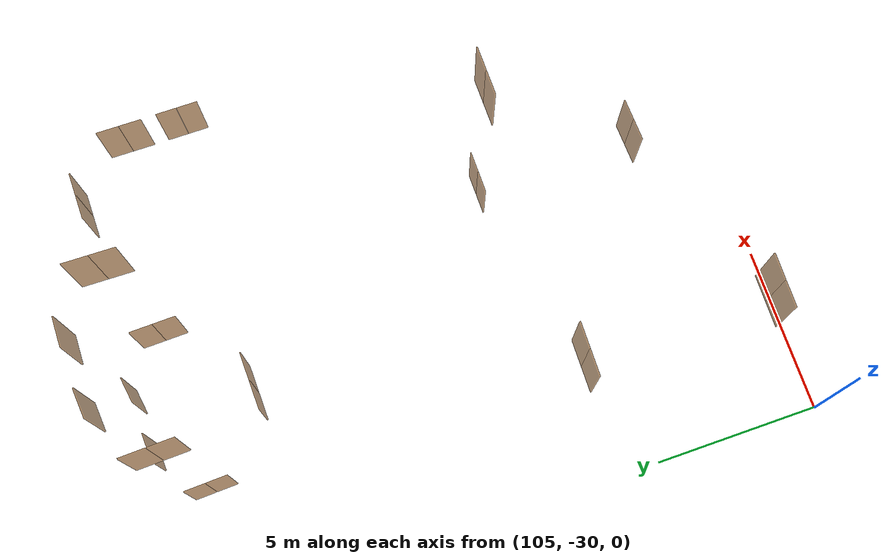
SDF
<sdf version="1.7">
 <world name="sim_world">
  <model name="TD2040CP1">
   <pose>110.93195870937694 -14.513987817578775 0.0 0 0 0.010869137177270357</pose>
   <link name="right">
    <pose>0.43675845922780765 0 1.11 0 0 0</pose>
    <visual name="right_visual">
     <geometry><box><size>0.8635169184556153 0.03 2.2</size></box></geometry>
     <material>
      <ambient>0.5 0.25 0 0.6</ambient>
      <diffuse>0.5 0.25 0 0.6</diffuse>
      <pbr><metal><metalness>0.0</metalness></metal></pbr>
     </material>
    </visual>
    <collision name="right_collision">
     <geometry><box><size>0.8635169184556153 0.03 2.2</size></box></geometry>
     <surface><contact><collide_bitmask>0x02</collide_bitmask></contact></surface>
    </collision>
    <inertial>
     <mass>50.0</mass>
     <inertia><ixx>20.17041666666667</ixx><iyy>23.273589451912844</iyy><izz>3.1106727852461744</izz></inertia>
    </inertial>
   </link>
   <joint name="right_joint" type="revolute">
    <parent>world</parent>
    <child>right</child>
    <axis><xyz>0 0 -1</xyz><limit><lower>0</lower><upper>1.57</upper></limit></axis>
    <pose>0.43675845922780765 0 0 0 0 0</pose>
   </joint>
   <link name="left">
    <pose>-0.43675845922780765 0 1.11 0 0 0</pose>
    <visual name="left_visual">
     <geometry><box><size>0.8635169184556153 0.03 2.2</size></box></geometry>
     <material>
      <ambient>0.5 0.25 0 0.6</ambient>
      <diffuse>0.5 0.25 0 0.6</diffuse>
      <pbr><metal><metalness>0.0</metalness></metal></pbr>
     </material>
    </visual>
    <collision name="left_collision">
     <geometry><box><size>0.8635169184556153 0.03 2.2</size></box></geometry>
     <surface><contact><collide_bitmask>0x02</collide_bitmask></contact></surface>
    </collision>
    <inertial>
     <mass>50.0</mass>
     <inertia><ixx>20.17041666666667</ixx><iyy>23.273589451912844</iyy><izz>3.1106727852461744</izz></inertia>
    </inertial>
   </link>
   <joint name="left_joint" type="revolute">
    <parent>world</parent>
    <child>left</child>
    <axis><xyz>0 0 -1</xyz><limit><lower>-1.57</lower><upper>0</upper></limit></axis>
    <pose>-0.43675845922780765 0 0 0 0 0</pose>
   </joint>
   <plugin name="register_component" filename="libregister_component.so">
    <component name="Door">
     <v_max_door>0.5</v_max_door>
     <a_max_door>0.3</a_max_door>
     <a_nom_door>0.15</a_nom_door>
     <dx_min_door>0.01</dx_min_door>
     <f_max_door>500.0</f_max_door>
     <ros_interface>true</ros_interface>
     <door name="TD2040CP1" type="DoubleSwingDoor" left_joint_name="left_joint" right_joint_name="right_joint"/>
    </component>
   </plugin>
  </model>
  <model name="TD2037EA">
   <pose>108.55841164108816 -12.463243150577249 0.0 0 0 -1.5418189329433347</pose>
   <link name="right">
    <pose>0.3276870634666377 0 1.11 0 0 0</pose>
    <visual name="right_visual">
     <geometry><box><size>0.6453741269332753 0.03 2.2</size></box></geometry>
     <material>
      <ambient>0.5 0.25 0 0.6</ambient>
      <diffuse>0.5 0.25 0 0.6</diffuse>
      <pbr><metal><metalness>0.0</metalness></metal></pbr>
     </material>
    </visual>
    <collision name="right_collision">
     <geometry><box><size>0.6453741269332753 0.03 2.2</size></box></geometry>
     <surface><contact><collide_bitmask>0x02</collide_bitmask></contact></surface>
    </collision>
    <inertial>
     <mass>50.0</mass>
     <inertia><ixx>20.17041666666667</ixx><iyy>21.902115682145368</iyy><izz>1.7391990154786976</izz></inertia>
    </inertial>
   </link>
   <joint name="right_joint" type="revolute">
    <parent>world</parent>
    <child>right</child>
    <axis><xyz>0 0 -1</xyz><limit><lower>0</lower><upper>1.57</upper></limit></axis>
    <pose>0.3276870634666377 0 0 0 0 0</pose>
   </joint>
   <link name="left">
    <pose>-0.3276870634666377 0 1.11 0 0 0</pose>
    <visual name="left_visual">
     <geometry><box><size>0.6453741269332753 0.03 2.2</size></box></geometry>
     <material>
      <ambient>0.5 0.25 0 0.6</ambient>
      <diffuse>0.5 0.25 0 0.6</diffuse>
      <pbr><metal><metalness>0.0</metalness></metal></pbr>
     </material>
    </visual>
    <collision name="left_collision">
     <geometry><box><size>0.6453741269332753 0.03 2.2</size></box></geometry>
     <surface><contact><collide_bitmask>0x02</collide_bitmask></contact></surface>
    </collision>
    <inertial>
     <mass>50.0</mass>
     <inertia><ixx>20.17041666666667</ixx><iyy>21.902115682145368</iyy><izz>1.7391990154786976</izz></inertia>
    </inertial>
   </link>
   <joint name="left_joint" type="revolute">
    <parent>world</parent>
    <child>left</child>
    <axis><xyz>0 0 -1</xyz><limit><lower>-1.57</lower><upper>0</upper></limit></axis>
    <pose>-0.3276870634666377 0 0 0 0 0</pose>
   </joint>
   <plugin name="register_component" filename="libregister_component.so">
    <component name="Door">
     <v_max_door>0.5</v_max_door>
     <a_max_door>0.3</a_max_door>
     <a_nom_door>0.15</a_nom_door>
     <dx_min_door>0.01</dx_min_door>
     <f_max_door>500.0</f_max_door>
     <ros_interface>true</ros_interface>
     <door name="TD2037EA" type="DoubleSwingDoor" left_joint_name="left_joint" right_joint_name="right_joint"/>
    </component>
   </plugin>
  </model>
  <model name="TD2040CP2">
   <pose>113.40994184867046 -12.377795456118852 0.0 0 0 1.58430901780821</pose>
   <link name="right">
    <pose>0.35131703960291694 0 1.11 0 0 0</pose>
    <visual name="right_visual">
     <geometry><box><size>0.6926340792058339 0.03 2.2</size></box></geometry>
     <material>
      <ambient>0.5 0.25 0 0.6</ambient>
      <diffuse>0.5 0.25 0 0.6</diffuse>
      <pbr><metal><metalness>0.0</metalness></metal></pbr>
     </material>
    </visual>
    <collision name="right_collision">
     <geometry><box><size>0.6926340792058339 0.03 2.2</size></box></geometry>
     <surface><contact><collide_bitmask>0x02</collide_bitmask></contact></surface>
    </collision>
    <inertial>
     <mass>50.0</mass>
     <inertia><ixx>20.17041666666667</ixx><iyy>22.16559153198881</iyy><izz>2.002674865322139</izz></inertia>
    </inertial>
   </link>
   <joint name="right_joint" type="revolute">
    <parent>world</parent>
    <child>right</child>
    <axis><xyz>0 0 -1</xyz><limit><lower>0</lower><upper>1.57</upper></limit></axis>
    <pose>0.35131703960291694 0 0 0 0 0</pose>
   </joint>
   <link name="left">
    <pose>-0.35131703960291694 0 1.11 0 0 0</pose>
    <visual name="left_visual">
     <geometry><box><size>0.6926340792058339 0.03 2.2</size></box></geometry>
     <material>
      <ambient>0.5 0.25 0 0.6</ambient>
      <diffuse>0.5 0.25 0 0.6</diffuse>
      <pbr><metal><metalness>0.0</metalness></metal></pbr>
     </material>
    </visual>
    <collision name="left_collision">
     <geometry><box><size>0.6926340792058339 0.03 2.2</size></box></geometry>
     <surface><contact><collide_bitmask>0x02</collide_bitmask></contact></surface>
    </collision>
    <inertial>
     <mass>50.0</mass>
     <inertia><ixx>20.17041666666667</ixx><iyy>22.16559153198881</iyy><izz>2.002674865322139</izz></inertia>
    </inertial>
   </link>
   <joint name="left_joint" type="revolute">
    <parent>world</parent>
    <child>left</child>
    <axis><xyz>0 0 -1</xyz><limit><lower>-1.57</lower><upper>0</upper></limit></axis>
    <pose>-0.35131703960291694 0 0 0 0 0</pose>
   </joint>
   <plugin name="register_component" filename="libregister_component.so">
    <component name="Door">
     <v_max_door>0.5</v_max_door>
     <a_max_door>0.3</a_max_door>
     <a_nom_door>0.15</a_nom_door>
     <dx_min_door>0.01</dx_min_door>
     <f_max_door>500.0</f_max_door>
     <ros_interface>true</ros_interface>
     <door name="TD2040CP2" type="DoubleSwingDoor" left_joint_name="left_joint" right_joint_name="right_joint"/>
    </component>
   </plugin>
  </model>
  <model name="EM5">
   <pose>111.84223364934405 -11.14201350567555 0.0 0 0 0.13942592588749686</pose>
   <link name="right">
    <pose>0 0 1.11 0 0 0</pose>
    <visual name="right_visual">
     <geometry><box><size>0.7902498311618975 0.03 2.2</size></box></geometry>
     <material>
      <ambient>0.5 0.25 0 0.6</ambient>
      <diffuse>0.5 0.25 0 0.6</diffuse>
      <pbr><metal><metalness>0.0</metalness></metal></pbr>
     </material>
    </visual>
    <collision name="right_collision">
     <geometry><box><size>0.7902498311618975 0.03 2.2</size></box></geometry>
     <surface><contact><collide_bitmask>0x02</collide_bitmask></contact></surface>
    </collision>
    <inertial>
     <mass>50.0</mass>
     <inertia><ixx>20.17041666666667</ixx><iyy>22.7687283152142</iyy><izz>2.605811648547532</izz></inertia>
    </inertial>
   </link>
   <joint name="right_joint" type="revolute">
    <parent>world</parent>
    <child>right</child>
    <axis><xyz>0 0 -1</xyz><limit><lower>0</lower><upper>1.57</upper></limit></axis>
    <pose>0.40012491558094876 0 0 0 0 0</pose>
   </joint>
   <plugin name="register_component" filename="libregister_component.so">
    <component name="Door">
     <v_max_door>0.5</v_max_door>
     <a_max_door>0.3</a_max_door>
     <a_nom_door>0.15</a_nom_door>
     <dx_min_door>0.01</dx_min_door>
     <f_max_door>500.0</f_max_door>
     <ros_interface>true</ros_interface>
     <door name="EM5" type="SwingDoor" left_joint_name="empty_joint" right_joint_name="right_joint"/>
    </component>
   </plugin>
  </model>
  <model name="EM4">
   <pose>110.07656152432207 -11.211525328564349 0.0 0 0 -3.109853622996496</pose>
   <link name="right">
    <pose>0 0 1.11 0 0 0</pose>
    <visual name="right_visual">
     <geometry><box><size>0.8663307250637649 0.03 2.2</size></box></geometry>
     <material>
      <ambient>0.5 0.25 0 0.6</ambient>
      <diffuse>0.5 0.25 0 0.6</diffuse>
      <pbr><metal><metalness>0.0</metalness></metal></pbr>
     </material>
    </visual>
    <collision name="right_collision">
     <geometry><box><size>0.8663307250637649 0.03 2.2</size></box></geometry>
     <surface><contact><collide_bitmask>0x02</collide_bitmask></contact></surface>
    </collision>
    <inertial>
     <mass>50.0</mass>
     <inertia><ixx>20.17041666666667</ixx><iyy>23.293870521622956</iyy><izz>3.1309538549562856</izz></inertia>
    </inertial>
   </link>
   <joint name="right_joint" type="revolute">
    <parent>world</parent>
    <child>right</child>
    <axis><xyz>0 0 1</xyz><limit><lower>0</lower><upper>1.57</upper></limit></axis>
    <pose>0.43816536253188243 0 0 0 0 0</pose>
   </joint>
   <plugin name="register_component" filename="libregister_component.so">
    <component name="Door">
     <v_max_door>0.5</v_max_door>
     <a_max_door>0.3</a_max_door>
     <a_nom_door>0.15</a_nom_door>
     <dx_min_door>0.01</dx_min_door>
     <f_max_door>500.0</f_max_door>
     <ros_interface>true</ros_interface>
     <door name="EM4" type="SwingDoor" left_joint_name="empty_joint" right_joint_name="right_joint"/>
    </component>
   </plugin>
  </model>
  <model name="TD2043AA">
   <pose>117.86218869387619 -11.399220717297823 0.0 0 0 3.1318752434434827</pose>
   <link name="right">
    <pose>0.3580185026632924 0 1.11 0 0 0</pose>
    <visual name="right_visual">
     <geometry><box><size>0.7060370053265848 0.03 2.2</size></box></geometry>
     <material>
      <ambient>0.5 0.25 0 0.6</ambient>
      <diffuse>0.5 0.25 0 0.6</diffuse>
      <pbr><metal><metalness>0.0</metalness></metal></pbr>
     </material>
    </visual>
    <collision name="right_collision">
     <geometry><box><size>0.7060370053265848 0.03 2.2</size></box></geometry>
     <surface><contact><collide_bitmask>0x02</collide_bitmask></contact></surface>
    </collision>
    <inertial>
     <mass>50.0</mass>
     <inertia><ixx>20.17041666666667</ixx><iyy>22.243701053710552</iyy><izz>2.080784387043883</izz></inertia>
    </inertial>
   </link>
   <joint name="right_joint" type="revolute">
    <parent>world</parent>
    <child>right</child>
    <axis><xyz>0 0 -1</xyz><limit><lower>0</lower><upper>1.57</upper></limit></axis>
    <pose>0.3580185026632924 0 0 0 0 0</pose>
   </joint>
   <link name="left">
    <pose>-0.3580185026632924 0 1.11 0 0 0</pose>
    <visual name="left_visual">
     <geometry><box><size>0.7060370053265848 0.03 2.2</size></box></geometry>
     <material>
      <ambient>0.5 0.25 0 0.6</ambient>
      <diffuse>0.5 0.25 0 0.6</diffuse>
      <pbr><metal><metalness>0.0</metalness></metal></pbr>
     </material>
    </visual>
    <collision name="left_collision">
     <geometry><box><size>0.7060370053265848 0.03 2.2</size></box></geometry>
     <surface><contact><collide_bitmask>0x02</collide_bitmask></contact></surface>
    </collision>
    <inertial>
     <mass>50.0</mass>
     <inertia><ixx>20.17041666666667</ixx><iyy>22.243701053710552</iyy><izz>2.080784387043883</izz></inertia>
    </inertial>
   </link>
   <joint name="left_joint" type="revolute">
    <parent>world</parent>
    <child>left</child>
    <axis><xyz>0 0 -1</xyz><limit><lower>-1.57</lower><upper>0</upper></limit></axis>
    <pose>-0.3580185026632924 0 0 0 0 0</pose>
   </joint>
   <plugin name="register_component" filename="libregister_component.so">
    <component name="Door">
     <v_max_door>0.5</v_max_door>
     <a_max_door>0.3</a_max_door>
     <a_nom_door>0.15</a_nom_door>
     <dx_min_door>0.01</dx_min_door>
     <f_max_door>500.0</f_max_door>
     <ros_interface>true</ros_interface>
     <door name="TD2043AA" type="DoubleSwingDoor" left_joint_name="left_joint" right_joint_name="right_joint"/>
    </component>
   </plugin>
  </model>
  <model name="TD2021CP1">
   <pose>119.48187925736485 -13.185744144697498 0.0 0 0 1.5507964107931267</pose>
   <link name="right">
    <pose>0.3476398619596005 0 1.11 0 0 0</pose>
    <visual name="right_visual">
     <geometry><box><size>0.685279723919201 0.03 2.2</size></box></geometry>
     <material>
      <ambient>0.5 0.25 0 0.6</ambient>
      <diffuse>0.5 0.25 0 0.6</diffuse>
      <pbr><metal><metalness>0.0</metalness></metal></pbr>
     </material>
    </visual>
    <collision name="right_collision">
     <geometry><box><size>0.685279723919201 0.03 2.2</size></box></geometry>
     <surface><contact><collide_bitmask>0x02</collide_bitmask></contact></surface>
    </collision>
    <inertial>
     <mass>50.0</mass>
     <inertia><ixx>20.17041666666667</ixx><iyy>22.12336791672824</iyy><izz>1.9604512500615683</izz></inertia>
    </inertial>
   </link>
   <joint name="right_joint" type="revolute">
    <parent>world</parent>
    <child>right</child>
    <axis><xyz>0 0 -1</xyz><limit><lower>0</lower><upper>1.57</upper></limit></axis>
    <pose>0.3476398619596005 0 0 0 0 0</pose>
   </joint>
   <link name="left">
    <pose>-0.3476398619596005 0 1.11 0 0 0</pose>
    <visual name="left_visual">
     <geometry><box><size>0.685279723919201 0.03 2.2</size></box></geometry>
     <material>
      <ambient>0.5 0.25 0 0.6</ambient>
      <diffuse>0.5 0.25 0 0.6</diffuse>
      <pbr><metal><metalness>0.0</metalness></metal></pbr>
     </material>
    </visual>
    <collision name="left_collision">
     <geometry><box><size>0.685279723919201 0.03 2.2</size></box></geometry>
     <surface><contact><collide_bitmask>0x02</collide_bitmask></contact></surface>
    </collision>
    <inertial>
     <mass>50.0</mass>
     <inertia><ixx>20.17041666666667</ixx><iyy>22.12336791672824</iyy><izz>1.9604512500615683</izz></inertia>
    </inertial>
   </link>
   <joint name="left_joint" type="revolute">
    <parent>world</parent>
    <child>left</child>
    <axis><xyz>0 0 -1</xyz><limit><lower>-1.57</lower><upper>0</upper></limit></axis>
    <pose>-0.3476398619596005 0 0 0 0 0</pose>
   </joint>
   <plugin name="register_component" filename="libregister_component.so">
    <component name="Door">
     <v_max_door>0.5</v_max_door>
     <a_max_door>0.3</a_max_door>
     <a_nom_door>0.15</a_nom_door>
     <dx_min_door>0.01</dx_min_door>
     <f_max_door>500.0</f_max_door>
     <ros_interface>true</ros_interface>
     <door name="TD2021CP1" type="DoubleSwingDoor" left_joint_name="left_joint" right_joint_name="right_joint"/>
    </component>
   </plugin>
  </model>
  <model name="TD2021CP2">
   <pose>119.45955781472264 -14.968025487975128 0.0 0 0 1.5576916041753859</pose>
   <link name="right">
    <pose>0.32114661003415224 0 1.11 0 0 0</pose>
    <visual name="right_visual">
     <geometry><box><size>0.6322932200683045 0.03 2.2</size></box></geometry>
     <material>
      <ambient>0.5 0.25 0 0.6</ambient>
      <diffuse>0.5 0.25 0 0.6</diffuse>
      <pbr><metal><metalness>0.0</metalness></metal></pbr>
     </material>
    </visual>
    <collision name="right_collision">
     <geometry><box><size>0.6322932200683045 0.03 2.2</size></box></geometry>
     <surface><contact><collide_bitmask>0x02</collide_bitmask></contact></surface>
    </collision>
    <inertial>
     <mass>50.0</mass>
     <inertia><ixx>20.17041666666667</ixx><iyy>21.832477983934776</iyy><izz>1.6695613172681056</izz></inertia>
    </inertial>
   </link>
   <joint name="right_joint" type="revolute">
    <parent>world</parent>
    <child>right</child>
    <axis><xyz>0 0 -1</xyz><limit><lower>0</lower><upper>1.57</upper></limit></axis>
    <pose>0.32114661003415224 0 0 0 0 0</pose>
   </joint>
   <link name="left">
    <pose>-0.32114661003415224 0 1.11 0 0 0</pose>
    <visual name="left_visual">
     <geometry><box><size>0.6322932200683045 0.03 2.2</size></box></geometry>
     <material>
      <ambient>0.5 0.25 0 0.6</ambient>
      <diffuse>0.5 0.25 0 0.6</diffuse>
      <pbr><metal><metalness>0.0</metalness></metal></pbr>
     </material>
    </visual>
    <collision name="left_collision">
     <geometry><box><size>0.6322932200683045 0.03 2.2</size></box></geometry>
     <surface><contact><collide_bitmask>0x02</collide_bitmask></contact></surface>
    </collision>
    <inertial>
     <mass>50.0</mass>
     <inertia><ixx>20.17041666666667</ixx><iyy>21.832477983934776</iyy><izz>1.6695613172681056</izz></inertia>
    </inertial>
   </link>
   <joint name="left_joint" type="revolute">
    <parent>world</parent>
    <child>left</child>
    <axis><xyz>0 0 -1</xyz><limit><lower>-1.57</lower><upper>0</upper></limit></axis>
    <pose>-0.32114661003415224 0 0 0 0 0</pose>
   </joint>
   <plugin name="register_component" filename="libregister_component.so">
    <component name="Door">
     <v_max_door>0.5</v_max_door>
     <a_max_door>0.3</a_max_door>
     <a_nom_door>0.15</a_nom_door>
     <dx_min_door>0.01</dx_min_door>
     <f_max_door>500.0</f_max_door>
     <ros_interface>true</ros_interface>
     <door name="TD2021CP2" type="DoubleSwingDoor" left_joint_name="left_joint" right_joint_name="right_joint"/>
    </component>
   </plugin>
  </model>
  <model name="TD2046AA">
   <pose>114.60565967129442 -22.74313722678228 0.0 0 0 3.141592653589793</pose>
   <link name="right">
    <pose>0.3174324614661188 0 1.11 0 0 0</pose>
    <visual name="right_visual">
     <geometry><box><size>0.6248649229322376 0.03 2.2</size></box></geometry>
     <material>
      <ambient>0.5 0.25 0 0.6</ambient>
      <diffuse>0.5 0.25 0 0.6</diffuse>
      <pbr><metal><metalness>0.0</metalness></metal></pbr>
     </material>
    </visual>
    <collision name="right_collision">
     <geometry><box><size>0.6248649229322376 0.03 2.2</size></box></geometry>
     <surface><contact><collide_bitmask>0x02</collide_bitmask></contact></surface>
    </collision>
    <inertial>
     <mass>50.0</mass>
     <inertia><ixx>20.17041666666667</ixx><iyy>21.79356738296297</iyy><izz>1.630650716296297</izz></inertia>
    </inertial>
   </link>
   <joint name="right_joint" type="revolute">
    <parent>world</parent>
    <child>right</child>
    <axis><xyz>0 0 -1</xyz><limit><lower>0</lower><upper>1.57</upper></limit></axis>
    <pose>0.3174324614661188 0 0 0 0 0</pose>
   </joint>
   <link name="left">
    <pose>-0.3174324614661188 0 1.11 0 0 0</pose>
    <visual name="left_visual">
     <geometry><box><size>0.6248649229322376 0.03 2.2</size></box></geometry>
     <material>
      <ambient>0.5 0.25 0 0.6</ambient>
      <diffuse>0.5 0.25 0 0.6</diffuse>
      <pbr><metal><metalness>0.0</metalness></metal></pbr>
     </material>
    </visual>
    <collision name="left_collision">
     <geometry><box><size>0.6248649229322376 0.03 2.2</size></box></geometry>
     <surface><contact><collide_bitmask>0x02</collide_bitmask></contact></surface>
    </collision>
    <inertial>
     <mass>50.0</mass>
     <inertia><ixx>20.17041666666667</ixx><iyy>21.79356738296297</iyy><izz>1.630650716296297</izz></inertia>
    </inertial>
   </link>
   <joint name="left_joint" type="revolute">
    <parent>world</parent>
    <child>left</child>
    <axis><xyz>0 0 -1</xyz><limit><lower>-1.57</lower><upper>0</upper></limit></axis>
    <pose>-0.3174324614661188 0 0 0 0 0</pose>
   </joint>
   <plugin name="register_component" filename="libregister_component.so">
    <component name="Door">
     <v_max_door>0.5</v_max_door>
     <a_max_door>0.3</a_max_door>
     <a_nom_door>0.15</a_nom_door>
     <dx_min_door>0.01</dx_min_door>
     <f_max_door>500.0</f_max_door>
     <ros_interface>true</ros_interface>
     <door name="TD2046AA" type="DoubleSwingDoor" left_joint_name="left_joint" right_joint_name="right_joint"/>
    </component>
   </plugin>
  </model>
  <model name="TD2016CE1">
   <pose>114.59559313833813 -27.637929958942628 0.0 0 0 0.03998619467690964</pose>
   <link name="right">
    <pose>0.32859772831542156 0 1.11 0 0 0</pose>
    <visual name="right_visual">
     <geometry><box><size>0.6471954566308431 0.03 2.2</size></box></geometry>
     <material>
      <ambient>0.5 0.25 0 0.6</ambient>
      <diffuse>0.5 0.25 0 0.6</diffuse>
      <pbr><metal><metalness>0.0</metalness></metal></pbr>
     </material>
    </visual>
    <collision name="right_collision">
     <geometry><box><size>0.6471954566308431 0.03 2.2</size></box></geometry>
     <surface><contact><collide_bitmask>0x02</collide_bitmask></contact></surface>
    </collision>
    <inertial>
     <mass>50.0</mass>
     <inertia><ixx>20.17041666666667</ixx><iyy>21.911924829515026</iyy><izz>1.7490081628483565</izz></inertia>
    </inertial>
   </link>
   <joint name="right_joint" type="revolute">
    <parent>world</parent>
    <child>right</child>
    <axis><xyz>0 0 -1</xyz><limit><lower>0</lower><upper>1.57</upper></limit></axis>
    <pose>0.32859772831542156 0 0 0 0 0</pose>
   </joint>
   <link name="left">
    <pose>-0.32859772831542156 0 1.11 0 0 0</pose>
    <visual name="left_visual">
     <geometry><box><size>0.6471954566308431 0.03 2.2</size></box></geometry>
     <material>
      <ambient>0.5 0.25 0 0.6</ambient>
      <diffuse>0.5 0.25 0 0.6</diffuse>
      <pbr><metal><metalness>0.0</metalness></metal></pbr>
     </material>
    </visual>
    <collision name="left_collision">
     <geometry><box><size>0.6471954566308431 0.03 2.2</size></box></geometry>
     <surface><contact><collide_bitmask>0x02</collide_bitmask></contact></surface>
    </collision>
    <inertial>
     <mass>50.0</mass>
     <inertia><ixx>20.17041666666667</ixx><iyy>21.911924829515026</iyy><izz>1.7490081628483565</izz></inertia>
    </inertial>
   </link>
   <joint name="left_joint" type="revolute">
    <parent>world</parent>
    <child>left</child>
    <axis><xyz>0 0 -1</xyz><limit><lower>-1.57</lower><upper>0</upper></limit></axis>
    <pose>-0.32859772831542156 0 0 0 0 0</pose>
   </joint>
   <plugin name="register_component" filename="libregister_component.so">
    <component name="Door">
     <v_max_door>0.5</v_max_door>
     <a_max_door>0.3</a_max_door>
     <a_nom_door>0.15</a_nom_door>
     <dx_min_door>0.01</dx_min_door>
     <f_max_door>500.0</f_max_door>
     <ros_interface>true</ros_interface>
     <door name="TD2016CE1" type="DoubleSwingDoor" left_joint_name="left_joint" right_joint_name="right_joint"/>
    </component>
   </plugin>
  </model>
  <model name="TD2106AA1">
   <pose>107.33422326073593 -27.569170868249202 8.0 0 0 -0.014315952006502574</pose>
   <link name="right">
    <pose>0.34727191016413295 0 1.11 0 0 0</pose>
    <visual name="right_visual">
     <geometry><box><size>0.6845438203282659 0.03 2.2</size></box></geometry>
     <material>
      <ambient>0.5 0.25 0 0.6</ambient>
      <diffuse>0.5 0.25 0 0.6</diffuse>
      <pbr><metal><metalness>0.0</metalness></metal></pbr>
     </material>
    </visual>
    <collision name="right_collision">
     <geometry><box><size>0.6845438203282659 0.03 2.2</size></box></geometry>
     <surface><contact><collide_bitmask>0x02</collide_bitmask></contact></surface>
    </collision>
    <inertial>
     <mass>50.0</mass>
     <inertia><ixx>20.17041666666667</ixx><iyy>22.119167674790077</iyy><izz>1.9562510081234052</izz></inertia>
    </inertial>
   </link>
   <joint name="right_joint" type="revolute">
    <parent>world</parent>
    <child>right</child>
    <axis><xyz>0 0 -1</xyz><limit><lower>0</lower><upper>1.57</upper></limit></axis>
    <pose>0.34727191016413295 0 0 0 0 0</pose>
   </joint>
   <link name="left">
    <pose>-0.34727191016413295 0 1.11 0 0 0</pose>
    <visual name="left_visual">
     <geometry><box><size>0.6845438203282659 0.03 2.2</size></box></geometry>
     <material>
      <ambient>0.5 0.25 0 0.6</ambient>
      <diffuse>0.5 0.25 0 0.6</diffuse>
      <pbr><metal><metalness>0.0</metalness></metal></pbr>
     </material>
    </visual>
    <collision name="left_collision">
     <geometry><box><size>0.6845438203282659 0.03 2.2</size></box></geometry>
     <surface><contact><collide_bitmask>0x02</collide_bitmask></contact></surface>
    </collision>
    <inertial>
     <mass>50.0</mass>
     <inertia><ixx>20.17041666666667</ixx><iyy>22.119167674790077</iyy><izz>1.9562510081234052</izz></inertia>
    </inertial>
   </link>
   <joint name="left_joint" type="revolute">
    <parent>world</parent>
    <child>left</child>
    <axis><xyz>0 0 -1</xyz><limit><lower>-1.57</lower><upper>0</upper></limit></axis>
    <pose>-0.34727191016413295 0 0 0 0 0</pose>
   </joint>
   <plugin name="register_component" filename="libregister_component.so">
    <component name="Door">
     <v_max_door>0.5</v_max_door>
     <a_max_door>0.3</a_max_door>
     <a_nom_door>0.15</a_nom_door>
     <dx_min_door>0.01</dx_min_door>
     <f_max_door>500.0</f_max_door>
     <ros_interface>true</ros_interface>
     <door name="TD2106AA1" type="DoubleSwingDoor" left_joint_name="left_joint" right_joint_name="right_joint"/>
    </component>
   </plugin>
  </model>
  <model name="TD2105AA">
   <pose>107.33297833508654 -22.68511467075949 8.0 0 0 3.1212607733024695</pose>
   <link name="right">
    <pose>0.3447434769953224 0 1.11 0 0 0</pose>
    <visual name="right_visual">
     <geometry><box><size>0.6794869539906447 0.03 2.2</size></box></geometry>
     <material>
      <ambient>0.5 0.25 0 0.6</ambient>
      <diffuse>0.5 0.25 0 0.6</diffuse>
      <pbr><metal><metalness>0.0</metalness></metal></pbr>
     </material>
    </visual>
    <collision name="right_collision">
     <geometry><box><size>0.6794869539906447 0.03 2.2</size></box></geometry>
     <surface><contact><collide_bitmask>0x02</collide_bitmask></contact></surface>
    </collision>
    <inertial>
     <mass>50.0</mass>
     <inertia><ixx>20.17041666666667</ixx><iyy>22.09042716934786</iyy><izz>1.9275105026811858</izz></inertia>
    </inertial>
   </link>
   <joint name="right_joint" type="revolute">
    <parent>world</parent>
    <child>right</child>
    <axis><xyz>0 0 -1</xyz><limit><lower>0</lower><upper>1.57</upper></limit></axis>
    <pose>0.3447434769953224 0 0 0 0 0</pose>
   </joint>
   <link name="left">
    <pose>-0.3447434769953224 0 1.11 0 0 0</pose>
    <visual name="left_visual">
     <geometry><box><size>0.6794869539906447 0.03 2.2</size></box></geometry>
     <material>
      <ambient>0.5 0.25 0 0.6</ambient>
      <diffuse>0.5 0.25 0 0.6</diffuse>
      <pbr><metal><metalness>0.0</metalness></metal></pbr>
     </material>
    </visual>
    <collision name="left_collision">
     <geometry><box><size>0.6794869539906447 0.03 2.2</size></box></geometry>
     <surface><contact><collide_bitmask>0x02</collide_bitmask></contact></surface>
    </collision>
    <inertial>
     <mass>50.0</mass>
     <inertia><ixx>20.17041666666667</ixx><iyy>22.09042716934786</iyy><izz>1.9275105026811858</izz></inertia>
    </inertial>
   </link>
   <joint name="left_joint" type="revolute">
    <parent>world</parent>
    <child>left</child>
    <axis><xyz>0 0 -1</xyz><limit><lower>-1.57</lower><upper>0</upper></limit></axis>
    <pose>-0.3447434769953224 0 0 0 0 0</pose>
   </joint>
   <plugin name="register_component" filename="libregister_component.so">
    <component name="Door">
     <v_max_door>0.5</v_max_door>
     <a_max_door>0.3</a_max_door>
     <a_nom_door>0.15</a_nom_door>
     <dx_min_door>0.01</dx_min_door>
     <f_max_door>500.0</f_max_door>
     <ros_interface>true</ros_interface>
     <door name="TD2105AA" type="DoubleSwingDoor" left_joint_name="left_joint" right_joint_name="right_joint"/>
    </component>
   </plugin>
  </model>
  <model name="TD2104AA">
   <pose>108.55326135818878 -12.350445967769003 8.0 0 0 -1.5483969063546774</pose>
   <link name="right">
    <pose>0.34828097666944996 0 1.11 0 0 0</pose>
    <visual name="right_visual">
     <geometry><box><size>0.6865619533388999 0.03 2.2</size></box></geometry>
     <material>
      <ambient>0.5 0.25 0 0.6</ambient>
      <diffuse>0.5 0.25 0 0.6</diffuse>
      <pbr><metal><metalness>0.0</metalness></metal></pbr>
     </material>
    </visual>
    <collision name="right_collision">
     <geometry><box><size>0.6865619533388999 0.03 2.2</size></box></geometry>
     <surface><contact><collide_bitmask>0x02</collide_bitmask></contact></surface>
    </collision>
    <inertial>
     <mass>50.0</mass>
     <inertia><ixx>20.17041666666667</ixx><iyy>22.130697149052196</iyy><izz>1.9677804823855243</izz></inertia>
    </inertial>
   </link>
   <joint name="right_joint" type="revolute">
    <parent>world</parent>
    <child>right</child>
    <axis><xyz>0 0 -1</xyz><limit><lower>0</lower><upper>1.57</upper></limit></axis>
    <pose>0.34828097666944996 0 0 0 0 0</pose>
   </joint>
   <link name="left">
    <pose>-0.34828097666944996 0 1.11 0 0 0</pose>
    <visual name="left_visual">
     <geometry><box><size>0.6865619533388999 0.03 2.2</size></box></geometry>
     <material>
      <ambient>0.5 0.25 0 0.6</ambient>
      <diffuse>0.5 0.25 0 0.6</diffuse>
      <pbr><metal><metalness>0.0</metalness></metal></pbr>
     </material>
    </visual>
    <collision name="left_collision">
     <geometry><box><size>0.6865619533388999 0.03 2.2</size></box></geometry>
     <surface><contact><collide_bitmask>0x02</collide_bitmask></contact></surface>
    </collision>
    <inertial>
     <mass>50.0</mass>
     <inertia><ixx>20.17041666666667</ixx><iyy>22.130697149052196</iyy><izz>1.9677804823855243</izz></inertia>
    </inertial>
   </link>
   <joint name="left_joint" type="revolute">
    <parent>world</parent>
    <child>left</child>
    <axis><xyz>0 0 -1</xyz><limit><lower>-1.57</lower><upper>0</upper></limit></axis>
    <pose>-0.34828097666944996 0 0 0 0 0</pose>
   </joint>
   <plugin name="register_component" filename="libregister_component.so">
    <component name="Door">
     <v_max_door>0.5</v_max_door>
     <a_max_door>0.3</a_max_door>
     <a_nom_door>0.15</a_nom_door>
     <dx_min_door>0.01</dx_min_door>
     <f_max_door>500.0</f_max_door>
     <ros_interface>true</ros_interface>
     <door name="TD2104AA" type="DoubleSwingDoor" left_joint_name="left_joint" right_joint_name="right_joint"/>
    </component>
   </plugin>
  </model>
  <model name="TD2111CP1">
   <pose>110.06300289167233 -11.193954971139899 8.0 0 0 -3.073331257355365</pose>
   <link name="right">
    <pose>0 0 1.11 0 0 0</pose>
    <visual name="right_visual">
     <geometry><box><size>0.769990566762279 0.03 2.2</size></box></geometry>
     <material>
      <ambient>0.5 0.25 0 0.6</ambient>
      <diffuse>0.5 0.25 0 0.6</diffuse>
      <pbr><metal><metalness>0.0</metalness></metal></pbr>
     </material>
    </visual>
    <collision name="right_collision">
     <geometry><box><size>0.769990566762279 0.03 2.2</size></box></geometry>
     <surface><contact><collide_bitmask>0x02</collide_bitmask></contact></surface>
    </collision>
    <inertial>
     <mass>50.0</mass>
     <inertia><ixx>20.17041666666667</ixx><iyy>22.63702280376207</iyy><izz>2.474106137095398</izz></inertia>
    </inertial>
   </link>
   <joint name="right_joint" type="revolute">
    <parent>world</parent>
    <child>right</child>
    <axis><xyz>0 0 1</xyz><limit><lower>0</lower><upper>1.57</upper></limit></axis>
    <pose>0.3899952833811395 0 0 0 0 0</pose>
   </joint>
   <plugin name="register_component" filename="libregister_component.so">
    <component name="Door">
     <v_max_door>0.5</v_max_door>
     <a_max_door>0.3</a_max_door>
     <a_nom_door>0.15</a_nom_door>
     <dx_min_door>0.01</dx_min_door>
     <f_max_door>500.0</f_max_door>
     <ros_interface>true</ros_interface>
     <door name="TD2111CP1" type="SwingDoor" left_joint_name="empty_joint" right_joint_name="right_joint"/>
    </component>
   </plugin>
  </model>
  <model name="TD2111CP2">
   <pose>111.83603972676622 -11.180371841238049 8.0 0 0 -0.03390159281173155</pose>
   <link name="right">
    <pose>0 0 1.11 0 0 0</pose>
    <visual name="right_visual">
     <geometry><box><size>0.7686357028150749 0.03 2.2</size></box></geometry>
     <material>
      <ambient>0.5 0.25 0 0.6</ambient>
      <diffuse>0.5 0.25 0 0.6</diffuse>
      <pbr><metal><metalness>0.0</metalness></metal></pbr>
     </material>
    </visual>
    <collision name="right_collision">
     <geometry><box><size>0.7686357028150749 0.03 2.2</size></box></geometry>
     <surface><contact><collide_bitmask>0x02</collide_bitmask></contact></surface>
    </collision>
    <inertial>
     <mass>50.0</mass>
     <inertia><ixx>20.17041666666667</ixx><iyy>22.62833684850844</iyy><izz>2.4654201818417674</izz></inertia>
    </inertial>
   </link>
   <joint name="right_joint" type="revolute">
    <parent>world</parent>
    <child>right</child>
    <axis><xyz>0 0 -1</xyz><limit><lower>0</lower><upper>1.57</upper></limit></axis>
    <pose>0.38931785140753744 0 0 0 0 0</pose>
   </joint>
   <plugin name="register_component" filename="libregister_component.so">
    <component name="Door">
     <v_max_door>0.5</v_max_door>
     <a_max_door>0.3</a_max_door>
     <a_nom_door>0.15</a_nom_door>
     <dx_min_door>0.01</dx_min_door>
     <f_max_door>500.0</f_max_door>
     <ros_interface>true</ros_interface>
     <door name="TD2111CP2" type="SwingDoor" left_joint_name="empty_joint" right_joint_name="right_joint"/>
    </component>
   </plugin>
  </model>
  <model name="TD2103AA">
   <pose>113.33209657919342 -12.384404133039924 8.0 0 0 1.5402005036758424</pose>
   <link name="right">
    <pose>0.3370193048298596 0 1.11 0 0 0</pose>
    <visual name="right_visual">
     <geometry><box><size>0.6640386096597192 0.03 2.2</size></box></geometry>
     <material>
      <ambient>0.5 0.25 0 0.6</ambient>
      <diffuse>0.5 0.25 0 0.6</diffuse>
      <pbr><metal><metalness>0.0</metalness></metal></pbr>
     </material>
    </visual>
    <collision name="right_collision">
     <geometry><box><size>0.6640386096597192 0.03 2.2</size></box></geometry>
     <surface><contact><collide_bitmask>0x02</collide_bitmask></contact></surface>
    </collision>
    <inertial>
     <mass>50.0</mass>
     <inertia><ixx>20.17041666666667</ixx><iyy>22.003946979661723</iyy><izz>1.8410303129950538</izz></inertia>
    </inertial>
   </link>
   <joint name="right_joint" type="revolute">
    <parent>world</parent>
    <child>right</child>
    <axis><xyz>0 0 -1</xyz><limit><lower>0</lower><upper>1.57</upper></limit></axis>
    <pose>0.3370193048298596 0 0 0 0 0</pose>
   </joint>
   <link name="left">
    <pose>-0.3370193048298596 0 1.11 0 0 0</pose>
    <visual name="left_visual">
     <geometry><box><size>0.6640386096597192 0.03 2.2</size></box></geometry>
     <material>
      <ambient>0.5 0.25 0 0.6</ambient>
      <diffuse>0.5 0.25 0 0.6</diffuse>
      <pbr><metal><metalness>0.0</metalness></metal></pbr>
     </material>
    </visual>
    <collision name="left_collision">
     <geometry><box><size>0.6640386096597192 0.03 2.2</size></box></geometry>
     <surface><contact><collide_bitmask>0x02</collide_bitmask></contact></surface>
    </collision>
    <inertial>
     <mass>50.0</mass>
     <inertia><ixx>20.17041666666667</ixx><iyy>22.003946979661723</iyy><izz>1.8410303129950538</izz></inertia>
    </inertial>
   </link>
   <joint name="left_joint" type="revolute">
    <parent>world</parent>
    <child>left</child>
    <axis><xyz>0 0 -1</xyz><limit><lower>-1.57</lower><upper>0</upper></limit></axis>
    <pose>-0.3370193048298596 0 0 0 0 0</pose>
   </joint>
   <plugin name="register_component" filename="libregister_component.so">
    <component name="Door">
     <v_max_door>0.5</v_max_door>
     <a_max_door>0.3</a_max_door>
     <a_nom_door>0.15</a_nom_door>
     <dx_min_door>0.01</dx_min_door>
     <f_max_door>500.0</f_max_door>
     <ros_interface>true</ros_interface>
     <door name="TD2103AA" type="DoubleSwingDoor" left_joint_name="left_joint" right_joint_name="right_joint"/>
    </component>
   </plugin>
  </model>
  <model name="TD2102AA">
   <pose>114.57246071628536 -22.74994451802842 8.0 0 0 -3.1363260707251404</pose>
   <link name="right">
    <pose>0.324282885191385 0 1.11 0 0 0</pose>
    <visual name="right_visual">
     <geometry><box><size>0.63856577038277 0.03 2.2</size></box></geometry>
     <material>
      <ambient>0.5 0.25 0 0.6</ambient>
      <diffuse>0.5 0.25 0 0.6</diffuse>
      <pbr><metal><metalness>0.0</metalness></metal></pbr>
     </material>
    </visual>
    <collision name="right_collision">
     <geometry><box><size>0.63856577038277 0.03 2.2</size></box></geometry>
     <surface><contact><collide_bitmask>0x02</collide_bitmask></contact></surface>
    </collision>
    <inertial>
     <mass>50.0</mass>
     <inertia><ixx>20.17041666666667</ixx><iyy>21.865692679602258</iyy><izz>1.7027760129355856</izz></inertia>
    </inertial>
   </link>
   <joint name="right_joint" type="revolute">
    <parent>world</parent>
    <child>right</child>
    <axis><xyz>0 0 -1</xyz><limit><lower>0</lower><upper>1.57</upper></limit></axis>
    <pose>0.324282885191385 0 0 0 0 0</pose>
   </joint>
   <link name="left">
    <pose>-0.324282885191385 0 1.11 0 0 0</pose>
    <visual name="left_visual">
     <geometry><box><size>0.63856577038277 0.03 2.2</size></box></geometry>
     <material>
      <ambient>0.5 0.25 0 0.6</ambient>
      <diffuse>0.5 0.25 0 0.6</diffuse>
      <pbr><metal><metalness>0.0</metalness></metal></pbr>
     </material>
    </visual>
    <collision name="left_collision">
     <geometry><box><size>0.63856577038277 0.03 2.2</size></box></geometry>
     <surface><contact><collide_bitmask>0x02</collide_bitmask></contact></surface>
    </collision>
    <inertial>
     <mass>50.0</mass>
     <inertia><ixx>20.17041666666667</ixx><iyy>21.865692679602258</iyy><izz>1.7027760129355856</izz></inertia>
    </inertial>
   </link>
   <joint name="left_joint" type="revolute">
    <parent>world</parent>
    <child>left</child>
    <axis><xyz>0 0 -1</xyz><limit><lower>-1.57</lower><upper>0</upper></limit></axis>
    <pose>-0.324282885191385 0 0 0 0 0</pose>
   </joint>
   <plugin name="register_component" filename="libregister_component.so">
    <component name="Door">
     <v_max_door>0.5</v_max_door>
     <a_max_door>0.3</a_max_door>
     <a_nom_door>0.15</a_nom_door>
     <dx_min_door>0.01</dx_min_door>
     <f_max_door>500.0</f_max_door>
     <ros_interface>true</ros_interface>
     <door name="TD2102AA" type="DoubleSwingDoor" left_joint_name="left_joint" right_joint_name="right_joint"/>
    </component>
   </plugin>
  </model>
 </world>
</sdf>
